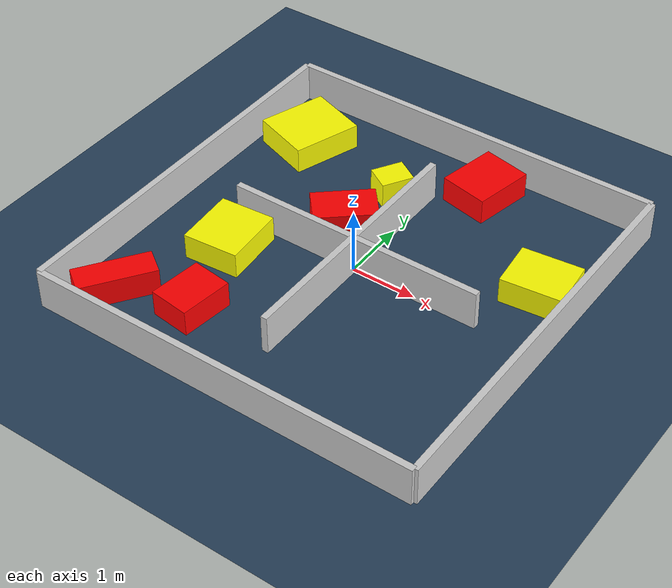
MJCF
<?xml version="1.0" ?>
<mujoco model="generated_environment">
  <option timestep="0.01" integrator="RK4" cone="elliptic"/>
  <default>
    <geom density="1"/>
  </default>
  <asset>
    <texture builtin="gradient" height="3072" rgb1="0.3 0.5 0.7" rgb2="0 0 0" type="skybox" width="512"/>
    <texture builtin="checker" height="300" mark="edge" markrgb="0.8 0.8 0.8" name="groundplane" rgb1="0.2 0.3 0.4" rgb2="0.1 0.2 0.3" type="2d" width="300"/>
    <material name="groundplane" reflectance="0.2" texrepeat="5 5" texture="groundplane" texuniform="true"/>
    <material name="robot" rgba="0.0 1.0 0.0 1"/>
  </asset>
  <worldbody>
    <light dir="0 0 -1" directional="true" pos="0 0 1.5"/>
    <geom condim="4" friction="1.0 0.005 0.001" material="groundplane" name="floor" size="0 0 0.05" type="plane"/>
    <body name="walls">
      <geom name="wall_1" condim="4" pos="-3.0 0.0 0.3" rgba="0.800000011920929 0.800000011920929 0.800000011920929 1.0" size="0.05 3.0 0.3" type="box"/>
      <geom name="wall_2" condim="4" pos="3.0 0.0 0.3" rgba="0.800000011920929 0.800000011920929 0.800000011920929 1.0" size="0.05 3.0 0.3" type="box"/>
      <geom name="wall_3" condim="4" pos="0.0 -3.0 0.3" rgba="0.800000011920929 0.800000011920929 0.800000011920929 1.0" size="3.0 0.05 0.3" type="box"/>
      <geom name="wall_4" condim="4" pos="0.0 3.0 0.3" rgba="0.800000011920929 0.800000011920929 0.800000011920929 1.0" size="3.0 0.05 0.3" type="box"/>
      <geom name="wall_5" condim="4" pos="1.0 0.0 0.3" rgba="0.800000011920929 0.800000011920929 0.800000011920929 1.0" size="1.0 0.05 0.3" type="box"/>
      <geom name="wall_6" condim="4" pos="-1.0 0.0 0.3" rgba="0.800000011920929 0.800000011920929 0.800000011920929 1.0" size="1.0 0.05 0.3" type="box"/>
      <geom name="wall_7" condim="4" pos="0.0 -1.0 0.3" rgba="0.800000011920929 0.800000011920929 0.800000011920929 1.0" size="0.05 1.0 0.3" type="box"/>
      <geom name="wall_8" condim="4" pos="0.0 1.0 0.3" rgba="0.800000011920929 0.800000011920929 0.800000011920929 1.0" size="0.05 1.0 0.3" type="box"/>
    </body>
    <body name="robot">
      <joint name="joint_x" type="slide" pos="0 0 0" axis="1 0 0"/>
      <joint name="joint_y" type="slide" pos="0 0 0" axis="0 1 0"/>
      <geom name="robot" type="sphere" pos="-0.02219805354677762 -0.07487010306423603 0.2" size="0.05" mass="5." friction="1.0 0.005 0.0001" condim="4"/>
      <site name="sensor_ball"/>
    </body>
    <body name="obstacle_1_static">
      <geom name="obstacle_1_static" condim="4" pos="-2.3634538243691727 -2.249948583568288 0.2" euler="0 0 325.0545587533761" friction="1.0 0.005 0.001" rgba="1 0 0 1" size="0.21168915746167272 0.5707441223123543 0.2" type="box"/>
    </body>
    <body name="obstacle_2_movable">
      <geom name="obstacle_2_movable" condim="4" pos="2.3915943231909758 1.02027092091519 0.2" euler="0 0 96.07358814770632" friction="1.0 0.005 0.001" rgba="1 1 0 1" size="0.3766967728745967 0.46290189783925767 0.2" type="box" mass="0.1"/>
      <joint type="free"/>
    </body>
    <body name="obstacle_3_static">
      <geom name="obstacle_3_static" condim="4" pos="-0.6600421312128573 0.7094805124993484 0.2" euler="0 0 40.846889273334774" friction="1.0 0.005 0.001" rgba="1 0 0 1" size="0.47572802182983676 0.2921645485239872 0.2" type="box"/>
    </body>
    <body name="obstacle_4_static">
      <geom name="obstacle_4_static" condim="4" pos="-1.2973087841977025 -1.9270123267848716 0.2" euler="0 0 353.0189737686631" friction="1.0 0.005 0.001" rgba="1 0 0 1" size="0.310930781595511 0.4021192538287628 0.2" type="box"/>
    </body>
    <body name="obstacle_5_movable">
      <geom name="obstacle_5_movable" condim="4" pos="-2.219467741342317 1.9811209585406644 0.2" euler="0 0 341.27600824189074" friction="1.0 0.005 0.001" rgba="1 1 0 1" size="0.4781473584398921 0.5398531773556967 0.2" type="box" mass="0.1"/>
      <joint type="free"/>
    </body>
    <body name="obstacle_6_movable">
      <geom name="obstacle_6_movable" condim="4" pos="-1.6763610088089274 -0.6376778775258218 0.2" euler="0 0 274.4551754145657" friction="1.0 0.005 0.001" rgba="1 1 0 1" size="0.4757252499985532 0.4261193906860598 0.2" type="box" mass="0.1"/>
      <joint type="free"/>
    </body>
    <body name="obstacle_7_static">
      <geom name="obstacle_7_static" condim="4" pos="0.6415408577866897 2.4029902582008784 0.2" euler="0 0 78.35025786925046" friction="1.0 0.005 0.001" rgba="1 0 0 1" size="0.46702762034167133 0.3795841565516904 0.2" type="box"/>
    </body>
    <body name="obstacle_8_movable">
      <geom name="obstacle_8_movable" condim="4" pos="-0.49090332146943183 1.6697110270020081 0.2" euler="0 0 58.954834890252144" friction="1.0 0.005 0.001" rgba="1 1 0 1" size="0.2478518677010118 0.20579727551825072 0.2" type="box" mass="0.1"/>
      <joint type="free"/>
    </body>
  </worldbody>
  <actuator>
    <motor name="actuator_x" joint="joint_x" gear="1" ctrlrange="-1 1"/>
    <motor name="actuator_y" joint="joint_y" gear="1" ctrlrange="-1 1"/>
  </actuator>
</mujoco>
